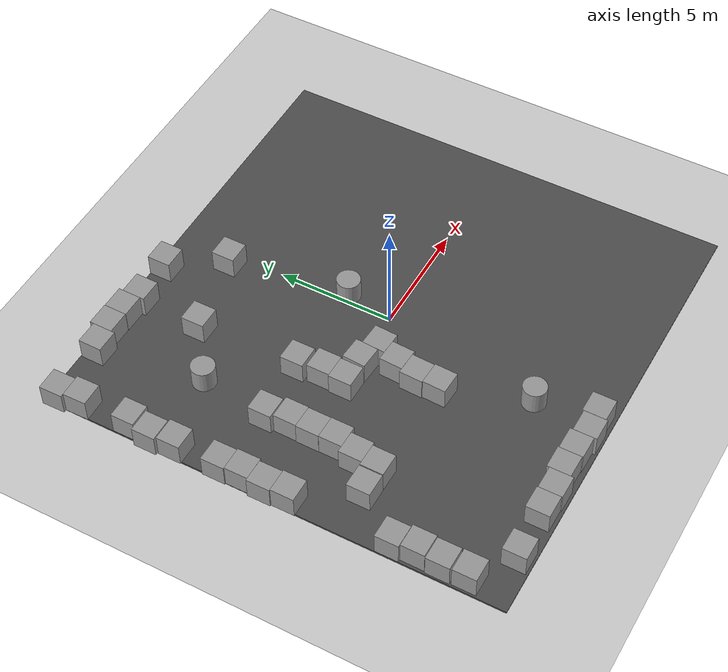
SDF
<sdf version="1.6">
 <world name="default">
  <model name="ground_plane">
   <static>1</static>
   <link name="link">
    <collision name="collision">
     <geometry><plane><normal>0 0 1</normal><size>100 100</size></plane></geometry>
     <surface><friction><ode><mu>100</mu><mu2>50</mu2></ode></friction></surface>
    </collision>
    <visual name="visual">
     <cast_shadows>0</cast_shadows>
     <geometry><plane><normal>0 0 1</normal><size>100 100</size></plane></geometry>
     <material>
      <script><uri>file://media/materials/scripts/gazebo.material</uri><name>Gazebo/Grey</name></script>
     </material>
    </visual>
   </link>
  </model>
  <model name="asphalt_plane">
   <static>1</static>
   <link name="link">
    <collision name="collision"><geometry><box><size>20 20 0.1</size></box></geometry></collision>
    <visual name="visual">
     <cast_shadows>0</cast_shadows>
     <geometry><box><size>20 20 0.1</size></box></geometry>
     <material>
      <script>
       <uri>model://asphalt_plane/materials/scripts</uri>
       <uri>model://asphalt_plane/materials/textures</uri>
       <name>vrc/asphalt</name>
      </script>
     </material>
    </visual>
   </link>
   <pose>0.023839 -0.146036 0 0 -0 0</pose>
  </model>
  <model name="unit_box_0">
   <pose>-9.39332 -8.3779 0.55 0 -0 0</pose>
   <link name="link">
    <inertial>
     <mass>1</mass>
     <inertia>
      <ixx>0.166667</ixx>
      <ixy>0</ixy>
      <ixz>0</ixz>
      <iyy>0.166667</iyy>
      <iyz>0</iyz>
      <izz>0.166667</izz>
     </inertia>
    </inertial>
    <collision name="collision"><geometry><box><size>1 1 1</size></box></geometry></collision>
    <visual name="visual">
     <geometry><box><size>1 1 1</size></box></geometry>
     <material>
      <script><name>Gazebo/Grey</name><uri>file://media/materials/scripts/gazebo.material</uri></script>
     </material>
    </visual>
   </link>
  </model>
  <model name="unit_box_1">
   <pose>-9.41762 -7.31551 0.55 0 -0 0</pose>
   <link name="link">
    <inertial>
     <mass>1</mass>
     <inertia>
      <ixx>0.166667</ixx>
      <ixy>0</ixy>
      <ixz>0</ixz>
      <iyy>0.166667</iyy>
      <iyz>0</iyz>
      <izz>0.166667</izz>
     </inertia>
    </inertial>
    <collision name="collision"><geometry><box><size>1 1 1</size></box></geometry></collision>
    <visual name="visual">
     <geometry><box><size>1 1 1</size></box></geometry>
     <material>
      <script><name>Gazebo/Grey</name><uri>file://media/materials/scripts/gazebo.material</uri></script>
     </material>
    </visual>
   </link>
  </model>
  <model name="unit_box_1_clone">
   <pose>-9.36197 -6.27951 0.550002 -4e-06 -0 5.5e-05</pose>
   <link name="link">
    <inertial>
     <mass>1</mass>
     <inertia>
      <ixx>0.166667</ixx>
      <ixy>0</ixy>
      <ixz>0</ixz>
      <iyy>0.166667</iyy>
      <iyz>0</iyz>
      <izz>0.166667</izz>
     </inertia>
    </inertial>
    <collision name="collision"><geometry><box><size>1 1 1</size></box></geometry></collision>
    <visual name="visual">
     <geometry><box><size>1 1 1</size></box></geometry>
     <material>
      <script><name>Gazebo/Grey</name><uri>file://media/materials/scripts/gazebo.material</uri></script>
     </material>
    </visual>
   </link>
  </model>
  <model name="unit_box_1_clone_0">
   <pose>-9.46652 -5.26997 0.550002 -4e-06 -0 5.4e-05</pose>
   <link name="link">
    <inertial>
     <mass>1</mass>
     <inertia>
      <ixx>0.166667</ixx>
      <ixy>0</ixy>
      <ixz>0</ixz>
      <iyy>0.166667</iyy>
      <iyz>0</iyz>
      <izz>0.166667</izz>
     </inertia>
    </inertial>
    <collision name="collision"><geometry><box><size>1 1 1</size></box></geometry></collision>
    <visual name="visual">
     <geometry><box><size>1 1 1</size></box></geometry>
     <material>
      <script><name>Gazebo/Grey</name><uri>file://media/materials/scripts/gazebo.material</uri></script>
     </material>
    </visual>
   </link>
  </model>
  <model name="unit_box_1_clone_1">
   <pose>-7.99792 -3.28025 0.550002 -4e-06 -0 5.3e-05</pose>
   <link name="link">
    <inertial>
     <mass>1</mass>
     <inertia>
      <ixx>0.166667</ixx>
      <ixy>0</ixy>
      <ixz>0</ixz>
      <iyy>0.166667</iyy>
      <iyz>0</iyz>
      <izz>0.166667</izz>
     </inertia>
    </inertial>
    <collision name="collision"><geometry><box><size>1 1 1</size></box></geometry></collision>
    <visual name="visual">
     <geometry><box><size>1 1 1</size></box></geometry>
     <material>
      <script><name>Gazebo/Grey</name><uri>file://media/materials/scripts/gazebo.material</uri></script>
     </material>
    </visual>
   </link>
  </model>
  <model name="unit_box_1_clone_2">
   <pose>-6.96345 -3.28331 0.55 0 0 -0.008637</pose>
   <link name="link">
    <inertial>
     <mass>1</mass>
     <inertia>
      <ixx>0.166667</ixx>
      <ixy>0</ixy>
      <ixz>0</ixz>
      <iyy>0.166667</iyy>
      <iyz>0</iyz>
      <izz>0.166667</izz>
     </inertia>
    </inertial>
    <collision name="collision"><geometry><box><size>1 1 1</size></box></geometry></collision>
    <visual name="visual">
     <geometry><box><size>1 1 1</size></box></geometry>
     <material>
      <script><name>Gazebo/Grey</name><uri>file://media/materials/scripts/gazebo.material</uri></script>
     </material>
    </visual>
   </link>
  </model>
  <model name="unit_box_1_clone_3">
   <pose>-6.82911 -2.28435 0.55 0 0 -0.008693</pose>
   <link name="link">
    <inertial>
     <mass>1</mass>
     <inertia>
      <ixx>0.166667</ixx>
      <ixy>0</ixy>
      <ixz>0</ixz>
      <iyy>0.166667</iyy>
      <iyz>0</iyz>
      <izz>0.166667</izz>
     </inertia>
    </inertial>
    <collision name="collision"><geometry><box><size>1 1 1</size></box></geometry></collision>
    <visual name="visual">
     <geometry><box><size>1 1 1</size></box></geometry>
     <material>
      <script><name>Gazebo/Grey</name><uri>file://media/materials/scripts/gazebo.material</uri></script>
     </material>
    </visual>
   </link>
  </model>
  <model name="unit_box_1_clone_4">
   <pose>-6.57609 -1.28591 0.55 0 0 -0.007937</pose>
   <link name="link">
    <inertial>
     <mass>1</mass>
     <inertia>
      <ixx>0.166667</ixx>
      <ixy>0</ixy>
      <ixz>0</ixz>
      <iyy>0.166667</iyy>
      <iyz>0</iyz>
      <izz>0.166667</izz>
     </inertia>
    </inertial>
    <collision name="collision"><geometry><box><size>1 1 1</size></box></geometry></collision>
    <visual name="visual">
     <geometry><box><size>1 1 1</size></box></geometry>
     <material>
      <script><name>Gazebo/Grey</name><uri>file://media/materials/scripts/gazebo.material</uri></script>
     </material>
    </visual>
   </link>
  </model>
  <model name="unit_box_1_clone_5">
   <pose>-6.58119 -0.285829 0.55 0 0 -0.007937</pose>
   <link name="link">
    <inertial>
     <mass>1</mass>
     <inertia>
      <ixx>0.166667</ixx>
      <ixy>0</ixy>
      <ixz>0</ixz>
      <iyy>0.166667</iyy>
      <iyz>0</iyz>
      <izz>0.166667</izz>
     </inertia>
    </inertial>
    <collision name="collision"><geometry><box><size>1 1 1</size></box></geometry></collision>
    <visual name="visual">
     <geometry><box><size>1 1 1</size></box></geometry>
     <material>
      <script><name>Gazebo/Grey</name><uri>file://media/materials/scripts/gazebo.material</uri></script>
     </material>
    </visual>
   </link>
  </model>
  <model name="unit_box_1_clone_6">
   <pose>-6.55058 0.71417 0.55 0 0 -0.008036</pose>
   <link name="link">
    <inertial>
     <mass>1</mass>
     <inertia>
      <ixx>0.166667</ixx>
      <ixy>0</ixy>
      <ixz>0</ixz>
      <iyy>0.166667</iyy>
      <iyz>0</iyz>
      <izz>0.166667</izz>
     </inertia>
    </inertial>
    <collision name="collision"><geometry><box><size>1 1 1</size></box></geometry></collision>
    <visual name="visual">
     <geometry><box><size>1 1 1</size></box></geometry>
     <material>
      <script><name>Gazebo/Grey</name><uri>file://media/materials/scripts/gazebo.material</uri></script>
     </material>
    </visual>
   </link>
  </model>
  <model name="unit_box_2">
   <pose>-6.68234 1.7653 0.55 0 -0 0</pose>
   <link name="link">
    <inertial>
     <mass>1</mass>
     <inertia>
      <ixx>0.166667</ixx>
      <ixy>0</ixy>
      <ixz>0</ixz>
      <iyy>0.166667</iyy>
      <iyz>0</iyz>
      <izz>0.166667</izz>
     </inertia>
    </inertial>
    <collision name="collision"><geometry><box><size>1 1 1</size></box></geometry></collision>
    <visual name="visual">
     <geometry><box><size>1 1 1</size></box></geometry>
     <material>
      <script><name>Gazebo/Grey</name><uri>file://media/materials/scripts/gazebo.material</uri></script>
     </material>
    </visual>
   </link>
  </model>
  <model name="unit_box_1_clone_7">
   <pose>-0.705 -9.49283 0.550002 -4e-06 -0 -0.003076</pose>
   <link name="link">
    <inertial>
     <mass>1</mass>
     <inertia>
      <ixx>0.166667</ixx>
      <ixy>0</ixy>
      <ixz>0</ixz>
      <iyy>0.166667</iyy>
      <iyz>0</iyz>
      <izz>0.166667</izz>
     </inertia>
    </inertial>
    <collision name="collision"><geometry><box><size>1 1 1</size></box></geometry></collision>
    <visual name="visual">
     <geometry><box><size>1 1 1</size></box></geometry>
     <material>
      <script><name>Gazebo/Grey</name><uri>file://media/materials/scripts/gazebo.material</uri></script>
     </material>
    </visual>
   </link>
  </model>
  <model name="unit_box_1_clone_8">
   <pose>-1.7073 -9.56117 0.550002 -4e-06 -0 0.000206</pose>
   <link name="link">
    <inertial>
     <mass>1</mass>
     <inertia>
      <ixx>0.166667</ixx>
      <ixy>0</ixy>
      <ixz>0</ixz>
      <iyy>0.166667</iyy>
      <iyz>0</iyz>
      <izz>0.166667</izz>
     </inertia>
    </inertial>
    <collision name="collision"><geometry><box><size>1 1 1</size></box></geometry></collision>
    <visual name="visual">
     <geometry><box><size>1 1 1</size></box></geometry>
     <material>
      <script><name>Gazebo/Grey</name><uri>file://media/materials/scripts/gazebo.material</uri></script>
     </material>
    </visual>
   </link>
  </model>
  <model name="unit_box_1_clone_9">
   <pose>-2.70756 -9.44656 0.550002 -4e-06 -0 0.000255</pose>
   <link name="link">
    <inertial>
     <mass>1</mass>
     <inertia>
      <ixx>0.166667</ixx>
      <ixy>0</ixy>
      <ixz>0</ixz>
      <iyy>0.166667</iyy>
      <iyz>0</iyz>
      <izz>0.166667</izz>
     </inertia>
    </inertial>
    <collision name="collision"><geometry><box><size>1 1 1</size></box></geometry></collision>
    <visual name="visual">
     <geometry><box><size>1 1 1</size></box></geometry>
     <material>
      <script><name>Gazebo/Grey</name><uri>file://media/materials/scripts/gazebo.material</uri></script>
     </material>
    </visual>
   </link>
  </model>
  <model name="unit_box_1_clone_10">
   <pose>-3.70787 -9.40958 0.550002 -4e-06 -0 0.000195</pose>
   <link name="link">
    <inertial>
     <mass>1</mass>
     <inertia>
      <ixx>0.166667</ixx>
      <ixy>0</ixy>
      <ixz>0</ixz>
      <iyy>0.166667</iyy>
      <iyz>0</iyz>
      <izz>0.166667</izz>
     </inertia>
    </inertial>
    <collision name="collision"><geometry><box><size>1 1 1</size></box></geometry></collision>
    <visual name="visual">
     <geometry><box><size>1 1 1</size></box></geometry>
     <material>
      <script><name>Gazebo/Grey</name><uri>file://media/materials/scripts/gazebo.material</uri></script>
     </material>
    </visual>
   </link>
  </model>
  <model name="unit_box_1_clone_11">
   <pose>-4.70788 -9.53278 0.550002 -4e-06 -0 0.000255</pose>
   <link name="link">
    <inertial>
     <mass>1</mass>
     <inertia>
      <ixx>0.166667</ixx>
      <ixy>0</ixy>
      <ixz>0</ixz>
      <iyy>0.166667</iyy>
      <iyz>0</iyz>
      <izz>0.166667</izz>
     </inertia>
    </inertial>
    <collision name="collision"><geometry><box><size>1 1 1</size></box></geometry></collision>
    <visual name="visual">
     <geometry><box><size>1 1 1</size></box></geometry>
     <material>
      <script><name>Gazebo/Grey</name><uri>file://media/materials/scripts/gazebo.material</uri></script>
     </material>
    </visual>
   </link>
  </model>
  <model name="unit_box_1_clone_12">
   <pose>-5.7079 -9.4971 0.550002 -4e-06 -0 0.000273</pose>
   <link name="link">
    <inertial>
     <mass>1</mass>
     <inertia>
      <ixx>0.166667</ixx>
      <ixy>0</ixy>
      <ixz>0</ixz>
      <iyy>0.166667</iyy>
      <iyz>0</iyz>
      <izz>0.166667</izz>
     </inertia>
    </inertial>
    <collision name="collision"><geometry><box><size>1 1 1</size></box></geometry></collision>
    <visual name="visual">
     <geometry><box><size>1 1 1</size></box></geometry>
     <material>
      <script><name>Gazebo/Grey</name><uri>file://media/materials/scripts/gazebo.material</uri></script>
     </material>
    </visual>
   </link>
  </model>
  <model name="unit_box_1_clone_13">
   <pose>-7.74682 -9.54879 0.550002 -4e-06 -0 4.5e-05</pose>
   <link name="link">
    <inertial>
     <mass>1</mass>
     <inertia>
      <ixx>0.166667</ixx>
      <ixy>0</ixy>
      <ixz>0</ixz>
      <iyy>0.166667</iyy>
      <iyz>0</iyz>
      <izz>0.166667</izz>
     </inertia>
    </inertial>
    <collision name="collision"><geometry><box><size>1 1 1</size></box></geometry></collision>
    <visual name="visual">
     <geometry><box><size>1 1 1</size></box></geometry>
     <material>
      <script><name>Gazebo/Grey</name><uri>file://media/materials/scripts/gazebo.material</uri></script>
     </material>
    </visual>
   </link>
  </model>
  <model name="unit_box_1_clone_40">
   <pose>-2.03627 9.35147 0.550002 -4e-06 -0 2.8e-05</pose>
   <link name="link">
    <inertial>
     <mass>1</mass>
     <inertia>
      <ixx>0.166667</ixx>
      <ixy>0</ixy>
      <ixz>0</ixz>
      <iyy>0.166667</iyy>
      <iyz>0</iyz>
      <izz>0.166667</izz>
     </inertia>
    </inertial>
    <collision name="collision"><geometry><box><size>1 1 1</size></box></geometry></collision>
    <visual name="visual">
     <geometry><box><size>1 1 1</size></box></geometry>
     <material>
      <script><name>Gazebo/Grey</name><uri>file://media/materials/scripts/gazebo.material</uri></script>
     </material>
    </visual>
   </link>
  </model>
  <model name="unit_box_1_clone_41">
   <pose>-4.02686 9.24341 0.549997 0 -6e-06 -0.009811</pose>
   <link name="link">
    <inertial>
     <mass>1</mass>
     <inertia>
      <ixx>0.166667</ixx>
      <ixy>0</ixy>
      <ixz>0</ixz>
      <iyy>0.166667</iyy>
      <iyz>0</iyz>
      <izz>0.166667</izz>
     </inertia>
    </inertial>
    <collision name="collision"><geometry><box><size>1 1 1</size></box></geometry></collision>
    <visual name="visual">
     <geometry><box><size>1 1 1</size></box></geometry>
     <material>
      <script><name>Gazebo/Grey</name><uri>file://media/materials/scripts/gazebo.material</uri></script>
     </material>
    </visual>
   </link>
  </model>
  <model name="unit_box_1_clone_42">
   <pose>-5.02535 9.42298 0.549999 0 -2e-06 -0.009904</pose>
   <link name="link">
    <inertial>
     <mass>1</mass>
     <inertia>
      <ixx>0.166667</ixx>
      <ixy>0</ixy>
      <ixz>0</ixz>
      <iyy>0.166667</iyy>
      <iyz>0</iyz>
      <izz>0.166667</izz>
     </inertia>
    </inertial>
    <collision name="collision"><geometry><box><size>1 1 1</size></box></geometry></collision>
    <visual name="visual">
     <geometry><box><size>1 1 1</size></box></geometry>
     <material>
      <script><name>Gazebo/Grey</name><uri>file://media/materials/scripts/gazebo.material</uri></script>
     </material>
    </visual>
   </link>
  </model>
  <model name="unit_box_1_clone_43">
   <pose>-6.02528 9.44737 0.55 0 0 -0.009967</pose>
   <link name="link">
    <inertial>
     <mass>1</mass>
     <inertia>
      <ixx>0.166667</ixx>
      <ixy>0</ixy>
      <ixz>0</ixz>
      <iyy>0.166667</iyy>
      <iyz>0</iyz>
      <izz>0.166667</izz>
     </inertia>
    </inertial>
    <collision name="collision"><geometry><box><size>1 1 1</size></box></geometry></collision>
    <visual name="visual">
     <geometry><box><size>1 1 1</size></box></geometry>
     <material>
      <script><name>Gazebo/Grey</name><uri>file://media/materials/scripts/gazebo.material</uri></script>
     </material>
    </visual>
   </link>
  </model>
  <model name="unit_box_1_clone_44">
   <pose>-7.02697 9.29032 0.55 0 0 -0.010047</pose>
   <link name="link">
    <inertial>
     <mass>1</mass>
     <inertia>
      <ixx>0.166667</ixx>
      <ixy>0</ixy>
      <ixz>0</ixz>
      <iyy>0.166667</iyy>
      <iyz>0</iyz>
      <izz>0.166667</izz>
     </inertia>
    </inertial>
    <collision name="collision"><geometry><box><size>1 1 1</size></box></geometry></collision>
    <visual name="visual">
     <geometry><box><size>1 1 1</size></box></geometry>
     <material>
      <script><name>Gazebo/Grey</name><uri>file://media/materials/scripts/gazebo.material</uri></script>
     </material>
    </visual>
   </link>
  </model>
  <model name="unit_box_1_clone_45">
   <pose>-9.65354 9.30939 0.549997 -6e-06 0 0.01666</pose>
   <link name="link">
    <inertial>
     <mass>1</mass>
     <inertia>
      <ixx>0.166667</ixx>
      <ixy>0</ixy>
      <ixz>0</ixz>
      <iyy>0.166667</iyy>
      <iyz>0</iyz>
      <izz>0.166667</izz>
     </inertia>
    </inertial>
    <collision name="collision"><geometry><box><size>1 1 1</size></box></geometry></collision>
    <visual name="visual">
     <geometry><box><size>1 1 1</size></box></geometry>
     <material>
      <script><name>Gazebo/Grey</name><uri>file://media/materials/scripts/gazebo.material</uri></script>
     </material>
    </visual>
   </link>
  </model>
  <model name="unit_box_1_clone_46">
   <pose>-9.50818 8.31159 0.549995 0 1e-05 0.016775</pose>
   <link name="link">
    <inertial>
     <mass>1</mass>
     <inertia>
      <ixx>0.166667</ixx>
      <ixy>0</ixy>
      <ixz>0</ixz>
      <iyy>0.166667</iyy>
      <iyz>0</iyz>
      <izz>0.166667</izz>
     </inertia>
    </inertial>
    <collision name="collision"><geometry><box><size>1 1 1</size></box></geometry></collision>
    <visual name="visual">
     <geometry><box><size>1 1 1</size></box></geometry>
     <material>
      <script><name>Gazebo/Grey</name><uri>file://media/materials/scripts/gazebo.material</uri></script>
     </material>
    </visual>
   </link>
  </model>
  <model name="unit_box_1_clone_47">
   <pose>-9.46719 6.13599 0.550002 -4e-06 -0 2.3e-05</pose>
   <link name="link">
    <inertial>
     <mass>1</mass>
     <inertia>
      <ixx>0.166667</ixx>
      <ixy>0</ixy>
      <ixz>0</ixz>
      <iyy>0.166667</iyy>
      <iyz>0</iyz>
      <izz>0.166667</izz>
     </inertia>
    </inertial>
    <collision name="collision"><geometry><box><size>1 1 1</size></box></geometry></collision>
    <visual name="visual">
     <geometry><box><size>1 1 1</size></box></geometry>
     <material>
      <script><name>Gazebo/Grey</name><uri>file://media/materials/scripts/gazebo.material</uri></script>
     </material>
    </visual>
   </link>
  </model>
  <model name="unit_box_1_clone_48">
   <pose>-9.65559 5.07229 0.549998 -2e-06 5e-06 1.7e-05</pose>
   <link name="link">
    <inertial>
     <mass>1</mass>
     <inertia>
      <ixx>0.166667</ixx>
      <ixy>0</ixy>
      <ixz>0</ixz>
      <iyy>0.166667</iyy>
      <iyz>0</iyz>
      <izz>0.166667</izz>
     </inertia>
    </inertial>
    <collision name="collision"><geometry><box><size>1 1 1</size></box></geometry></collision>
    <visual name="visual">
     <geometry><box><size>1 1 1</size></box></geometry>
     <material>
      <script><name>Gazebo/Grey</name><uri>file://media/materials/scripts/gazebo.material</uri></script>
     </material>
    </visual>
   </link>
  </model>
  <model name="unit_box_1_clone_49">
   <pose>-9.55137 4.03458 0.55 0 -0 3.6e-05</pose>
   <link name="link">
    <inertial>
     <mass>1</mass>
     <inertia>
      <ixx>0.166667</ixx>
      <ixy>0</ixy>
      <ixz>0</ixz>
      <iyy>0.166667</iyy>
      <iyz>0</iyz>
      <izz>0.166667</izz>
     </inertia>
    </inertial>
    <collision name="collision"><geometry><box><size>1 1 1</size></box></geometry></collision>
    <visual name="visual">
     <geometry><box><size>1 1 1</size></box></geometry>
     <material>
      <script><name>Gazebo/Grey</name><uri>file://media/materials/scripts/gazebo.material</uri></script>
     </material>
    </visual>
   </link>
  </model>
  <model name="unit_box_1_clone_50">
   <pose>-9.55708 2.06437 0.55 0 -0 0.002225</pose>
   <link name="link">
    <inertial>
     <mass>1</mass>
     <inertia>
      <ixx>0.166667</ixx>
      <ixy>0</ixy>
      <ixz>0</ixz>
      <iyy>0.166667</iyy>
      <iyz>0</iyz>
      <izz>0.166667</izz>
     </inertia>
    </inertial>
    <collision name="collision"><geometry><box><size>1 1 1</size></box></geometry></collision>
    <visual name="visual">
     <geometry><box><size>1 1 1</size></box></geometry>
     <material>
      <script><name>Gazebo/Grey</name><uri>file://media/materials/scripts/gazebo.material</uri></script>
     </material>
    </visual>
   </link>
  </model>
  <model name="unit_box_1_clone_51">
   <pose>-9.50403 1.06442 0.549995 -0 -1e-05 0.002365</pose>
   <link name="link">
    <inertial>
     <mass>1</mass>
     <inertia>
      <ixx>0.166667</ixx>
      <ixy>0</ixy>
      <ixz>0</ixz>
      <iyy>0.166667</iyy>
      <iyz>0</iyz>
      <izz>0.166667</izz>
     </inertia>
    </inertial>
    <collision name="collision"><geometry><box><size>1 1 1</size></box></geometry></collision>
    <visual name="visual">
     <geometry><box><size>1 1 1</size></box></geometry>
     <material>
      <script><name>Gazebo/Grey</name><uri>file://media/materials/scripts/gazebo.material</uri></script>
     </material>
    </visual>
   </link>
  </model>
  <model name="unit_box_1_clone_52">
   <pose>-9.58877 0.064154 0.549996 -7e-06 0 0.002427</pose>
   <link name="link">
    <inertial>
     <mass>1</mass>
     <inertia>
      <ixx>0.166667</ixx>
      <ixy>0</ixy>
      <ixz>0</ixz>
      <iyy>0.166667</iyy>
      <iyz>0</iyz>
      <izz>0.166667</izz>
     </inertia>
    </inertial>
    <collision name="collision"><geometry><box><size>1 1 1</size></box></geometry></collision>
    <visual name="visual">
     <geometry><box><size>1 1 1</size></box></geometry>
     <material>
      <script><name>Gazebo/Grey</name><uri>file://media/materials/scripts/gazebo.material</uri></script>
     </material>
    </visual>
   </link>
  </model>
  <model name="unit_box_1_clone_53">
   <pose>-9.53464 -0.935719 0.549995 -1e-05 0 0.002427</pose>
   <link name="link">
    <inertial>
     <mass>1</mass>
     <inertia>
      <ixx>0.166667</ixx>
      <ixy>0</ixy>
      <ixz>0</ixz>
      <iyy>0.166667</iyy>
      <iyz>0</iyz>
      <izz>0.166667</izz>
     </inertia>
    </inertial>
    <collision name="collision"><geometry><box><size>1 1 1</size></box></geometry></collision>
    <visual name="visual">
     <geometry><box><size>1 1 1</size></box></geometry>
     <material>
      <script><name>Gazebo/Grey</name><uri>file://media/materials/scripts/gazebo.material</uri></script>
     </material>
    </visual>
   </link>
  </model>
  <model name="unit_box_1_clone_54">
   <pose>-4.11777 6.40882 0.550002 -4e-06 -0 1.9e-05</pose>
   <link name="link">
    <inertial>
     <mass>1</mass>
     <inertia>
      <ixx>0.166667</ixx>
      <ixy>0</ixy>
      <ixz>0</ixz>
      <iyy>0.166667</iyy>
      <iyz>0</iyz>
      <izz>0.166667</izz>
     </inertia>
    </inertial>
    <collision name="collision"><geometry><box><size>1 1 1</size></box></geometry></collision>
    <visual name="visual">
     <geometry><box><size>1 1 1</size></box></geometry>
     <material>
      <script><name>Gazebo/Grey</name><uri>file://media/materials/scripts/gazebo.material</uri></script>
     </material>
    </visual>
   </link>
  </model>
  <model name="unit_box_3">
   <pose>-2.41859 -3.52645 0.55 0 0 -0.0426</pose>
   <link name="link">
    <inertial>
     <mass>1</mass>
     <inertia>
      <ixx>0.166667</ixx>
      <ixy>0</ixy>
      <ixz>0</ixz>
      <iyy>0.166667</iyy>
      <iyz>0</iyz>
      <izz>0.166667</izz>
     </inertia>
    </inertial>
    <collision name="collision"><geometry><box><size>1 1 1</size></box></geometry></collision>
    <visual name="visual">
     <geometry><box><size>1 1 1</size></box></geometry>
     <material>
      <script><name>Gazebo/Grey</name><uri>file://media/materials/scripts/gazebo.material</uri></script>
     </material>
    </visual>
   </link>
  </model>
  <model name="unit_box_1_clone_55">
   <pose>-2.4225 -2.52509 0.550002 0 4e-06 -0.042981</pose>
   <link name="link">
    <inertial>
     <mass>1</mass>
     <inertia>
      <ixx>0.166667</ixx>
      <ixy>0</ixy>
      <ixz>0</ixz>
      <iyy>0.166667</iyy>
      <iyz>0</iyz>
      <izz>0.166667</izz>
     </inertia>
    </inertial>
    <collision name="collision"><geometry><box><size>1 1 1</size></box></geometry></collision>
    <visual name="visual">
     <geometry><box><size>1 1 1</size></box></geometry>
     <material>
      <script><name>Gazebo/Grey</name><uri>file://media/materials/scripts/gazebo.material</uri></script>
     </material>
    </visual>
   </link>
  </model>
  <model name="unit_box_1_clone_56">
   <pose>-2.21364 -1.53187 0.55 0 0 -0.046464</pose>
   <link name="link">
    <inertial>
     <mass>1</mass>
     <inertia>
      <ixx>0.166667</ixx>
      <ixy>0</ixy>
      <ixz>0</ixz>
      <iyy>0.166667</iyy>
      <iyz>0</iyz>
      <izz>0.166667</izz>
     </inertia>
    </inertial>
    <collision name="collision"><geometry><box><size>1 1 1</size></box></geometry></collision>
    <visual name="visual">
     <geometry><box><size>1 1 1</size></box></geometry>
     <material>
      <script><name>Gazebo/Grey</name><uri>file://media/materials/scripts/gazebo.material</uri></script>
     </material>
    </visual>
   </link>
  </model>
  <model name="unit_box_1_clone_57">
   <pose>-1.80879 -0.548476 0.549998 -5e-06 -0 -0.053681</pose>
   <link name="link">
    <inertial>
     <mass>1</mass>
     <inertia>
      <ixx>0.166667</ixx>
      <ixy>0</ixy>
      <ixz>0</ixz>
      <iyy>0.166667</iyy>
      <iyz>0</iyz>
      <izz>0.166667</izz>
     </inertia>
    </inertial>
    <collision name="collision"><geometry><box><size>1 1 1</size></box></geometry></collision>
    <visual name="visual">
     <geometry><box><size>1 1 1</size></box></geometry>
     <material>
      <script><name>Gazebo/Grey</name><uri>file://media/materials/scripts/gazebo.material</uri></script>
     </material>
    </visual>
   </link>
  </model>
  <model name="unit_box_1_clone_58">
   <pose>-2.79447 -0.212923 0.549995 1e-05 0 -0.063888</pose>
   <link name="link">
    <inertial>
     <mass>1</mass>
     <inertia>
      <ixx>0.166667</ixx>
      <ixy>0</ixy>
      <ixz>0</ixz>
      <iyy>0.166667</iyy>
      <iyz>0</iyz>
      <izz>0.166667</izz>
     </inertia>
    </inertial>
    <collision name="collision"><geometry><box><size>1 1 1</size></box></geometry></collision>
    <visual name="visual">
     <geometry><box><size>1 1 1</size></box></geometry>
     <material>
      <script><name>Gazebo/Grey</name><uri>file://media/materials/scripts/gazebo.material</uri></script>
     </material>
    </visual>
   </link>
  </model>
  <model name="unit_box_1_clone_59">
   <pose>-3.89709 -0.175671 0.550002 -4e-06 -0 -0.003996</pose>
   <link name="link">
    <inertial>
     <mass>1</mass>
     <inertia>
      <ixx>0.166667</ixx>
      <ixy>0</ixy>
      <ixz>0</ixz>
      <iyy>0.166667</iyy>
      <iyz>0</iyz>
      <izz>0.166667</izz>
     </inertia>
    </inertial>
    <collision name="collision"><geometry><box><size>1 1 1</size></box></geometry></collision>
    <visual name="visual">
     <geometry><box><size>1 1 1</size></box></geometry>
     <material>
      <script><name>Gazebo/Grey</name><uri>file://media/materials/scripts/gazebo.material</uri></script>
     </material>
    </visual>
   </link>
  </model>
  <model name="unit_box_1_clone_60">
   <pose>-3.83809 0.82411 0.550002 -4e-06 -0 -0.003993</pose>
   <link name="link">
    <inertial>
     <mass>1</mass>
     <inertia>
      <ixx>0.166667</ixx>
      <ixy>0</ixy>
      <ixz>0</ixz>
      <iyy>0.166667</iyy>
      <iyz>0</iyz>
      <izz>0.166667</izz>
     </inertia>
    </inertial>
    <collision name="collision"><geometry><box><size>1 1 1</size></box></geometry></collision>
    <visual name="visual">
     <geometry><box><size>1 1 1</size></box></geometry>
     <material>
      <script><name>Gazebo/Grey</name><uri>file://media/materials/scripts/gazebo.material</uri></script>
     </material>
    </visual>
   </link>
  </model>
  <model name="unit_box_1_clone_61">
   <pose>-3.96948 1.94296 0.550002 -4e-06 -0 1.3e-05</pose>
   <link name="link">
    <inertial>
     <mass>1</mass>
     <inertia>
      <ixx>0.166667</ixx>
      <ixy>0</ixy>
      <ixz>0</ixz>
      <iyy>0.166667</iyy>
      <iyz>0</iyz>
      <izz>0.166667</izz>
     </inertia>
    </inertial>
    <collision name="collision"><geometry><box><size>1 1 1</size></box></geometry></collision>
    <visual name="visual">
     <geometry><box><size>1 1 1</size></box></geometry>
     <material>
      <script><name>Gazebo/Grey</name><uri>file://media/materials/scripts/gazebo.material</uri></script>
     </material>
    </visual>
   </link>
  </model>
  <model name="unit_box_1_clone_70">
   <pose>-0.580649 7.19257 0.550002 -4e-06 -0 8e-06</pose>
   <link name="link">
    <inertial>
     <mass>1</mass>
     <inertia>
      <ixx>0.166667</ixx>
      <ixy>0</ixy>
      <ixz>0</ixz>
      <iyy>0.166667</iyy>
      <iyz>0</iyz>
      <izz>0.166667</izz>
     </inertia>
    </inertial>
    <collision name="collision"><geometry><box><size>1 1 1</size></box></geometry></collision>
    <visual name="visual">
     <geometry><box><size>1 1 1</size></box></geometry>
     <material>
      <script><name>Gazebo/Grey</name><uri>file://media/materials/scripts/gazebo.material</uri></script>
     </material>
    </visual>
   </link>
  </model>
  <model name="unit_cylinder_0">
   <pose>-1.04453 -6.93227 0.550002 -1e-06 -4e-06 4e-06</pose>
   <link name="link">
    <inertial>
     <mass>1</mass>
     <inertia><ixx>0.145833</ixx><ixy>0</ixy><ixz>0</ixz><iyy>0.145833</iyy><iyz>0</iyz><izz>0.125</izz></inertia>
    </inertial>
    <collision name="collision">
     <geometry><cylinder><radius>0.5</radius><length>1</length></cylinder></geometry>
    </collision>
    <visual name="visual">
     <geometry><cylinder><radius>0.5</radius><length>1</length></cylinder></geometry>
     <material>
      <script><name>Gazebo/Grey</name><uri>file://media/materials/scripts/gazebo.material</uri></script>
     </material>
    </visual>
   </link>
  </model>
  <model name="unit_cylinder_0_clone">
   <pose>-6.27599 4.84785 0.550001 -3e-06 -1e-06 1.1e-05</pose>
   <link name="link">
    <inertial>
     <mass>1</mass>
     <inertia><ixx>0.145833</ixx><ixy>0</ixy><ixz>0</ixz><iyy>0.145833</iyy><iyz>0</iyz><izz>0.125</izz></inertia>
    </inertial>
    <collision name="collision">
     <geometry><cylinder><radius>0.5</radius><length>1</length></cylinder></geometry>
    </collision>
    <visual name="visual">
     <geometry><cylinder><radius>0.5</radius><length>1</length></cylinder></geometry>
     <material>
      <script><name>Gazebo/Grey</name><uri>file://media/materials/scripts/gazebo.material</uri></script>
     </material>
    </visual>
   </link>
  </model>
  <model name="unit_cylinder_0_clone_0">
   <pose>0.307959 2.06248 0.54999 0 -0 1.9e-05</pose>
   <link name="link">
    <inertial>
     <mass>1</mass>
     <inertia><ixx>0.145833</ixx><ixy>0</ixy><ixz>0</ixz><iyy>0.145833</iyy><iyz>0</iyz><izz>0.125</izz></inertia>
    </inertial>
    <collision name="collision">
     <geometry><cylinder><radius>0.5</radius><length>1</length></cylinder></geometry>
    </collision>
    <visual name="visual">
     <geometry><cylinder><radius>0.5</radius><length>1</length></cylinder></geometry>
     <material>
      <script><name>Gazebo/Grey</name><uri>file://media/materials/scripts/gazebo.material</uri></script>
     </material>
    </visual>
   </link>
  </model>
 </world>
</sdf>
